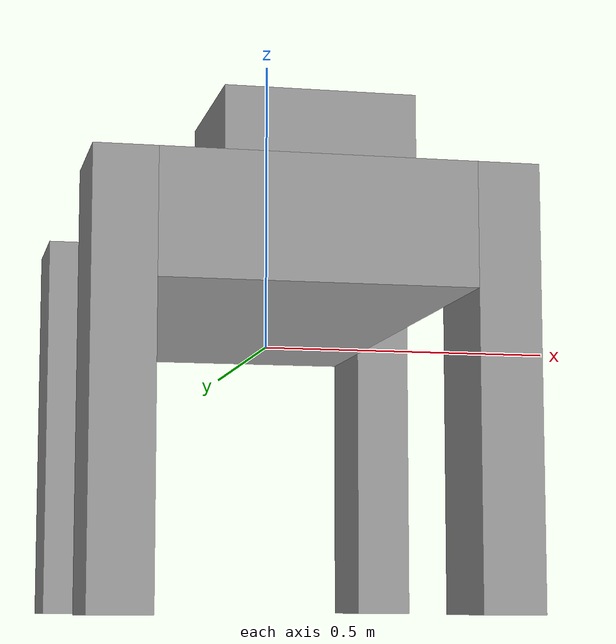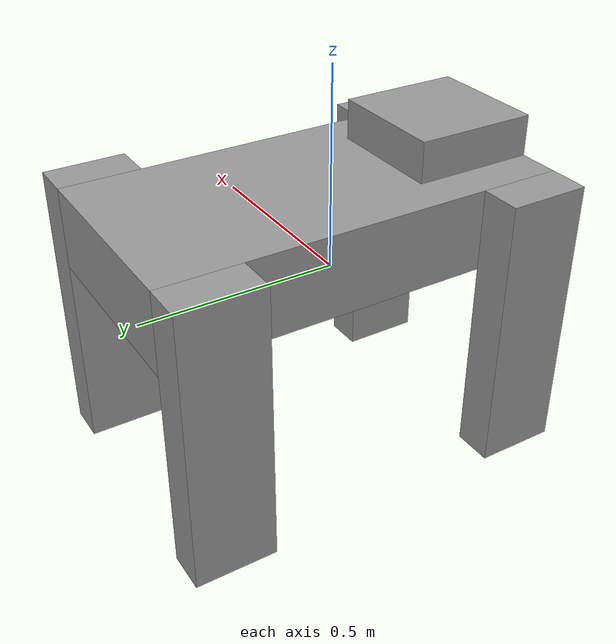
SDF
<?xml version='1.0'?>
<sdf version='1.7'>
  <model name='robot'>
    <link name='link_1_clone'>
      <inertial>
        <mass>1</mass>
        <inertia>
          <ixx>0.166667</ixx>
          <ixy>0</ixy>
          <ixz>0</ixz>
          <iyy>0.166667</iyy>
          <iyz>0</iyz>
          <izz>0.166667</izz>
        </inertia>
        <pose>0 0 0 0 -0 0</pose>
      </inertial>
      <pose>1e-06 0.058332 0.141667 0 -0 0</pose>
      <gravity>1</gravity>
      <self_collide>0</self_collide>
      <kinematic>0</kinematic>
      <enable_wind>0</enable_wind>
      <visual name='visual'>
        <pose>0 0 0 0 -0 0</pose>
        <geometry>
          <box>
            <size>0.5 1 0.2</size>
          </box>
        </geometry>
        <material>
          <lighting>1</lighting>
          <script>
            <uri>file://media/materials/scripts/gazebo.material</uri>
            <name>Gazebo/Grey</name>
          </script>
          <shader type='pixel'>
            <normal_map>__default__</normal_map>
          </shader>
          <ambient>0.3 0.3 0.3 1</ambient>
          <diffuse>0.7 0.7 0.7 1</diffuse>
          <specular>0.01 0.01 0.01 1</specular>
          <emissive>0 0 0 1</emissive>
        </material>
        <transparency>0</transparency>
        <cast_shadows>1</cast_shadows>
      </visual>
      <collision name='collision'>
        <laser_retro>0</laser_retro>
        <max_contacts>10</max_contacts>
        <pose>0 0 0 0 -0 0</pose>
        <geometry>
          <box>
            <size>0.5 1 0.2</size>
          </box>
        </geometry>
        <surface>
          <friction>
            <ode>
              <mu>1</mu>
              <mu2>1</mu2>
              <fdir1>0 0 0</fdir1>
              <slip1>0</slip1>
              <slip2>0</slip2>
            </ode>
            <torsional>
              <coefficient>1</coefficient>
              <patch_radius>0</patch_radius>
              <surface_radius>0</surface_radius>
              <use_patch_radius>1</use_patch_radius>
              <ode>
                <slip>0</slip>
              </ode>
            </torsional>
          </friction>
          <bounce>
            <restitution_coefficient>0</restitution_coefficient>
            <threshold>1e+06</threshold>
          </bounce>
          <contact>
            <collide_without_contact>0</collide_without_contact>
            <collide_without_contact_bitmask>1</collide_without_contact_bitmask>
            <collide_bitmask>1</collide_bitmask>
            <ode>
              <soft_cfm>0</soft_cfm>
              <soft_erp>0.2</soft_erp>
              <kp>1e+13</kp>
              <kd>1</kd>
              <max_vel>0.01</max_vel>
              <min_depth>0</min_depth>
            </ode>
            <bullet>
              <split_impulse>1</split_impulse>
              <split_impulse_penetration_threshold>-0.01</split_impulse_penetration_threshold>
              <soft_cfm>0</soft_cfm>
              <soft_erp>0.2</soft_erp>
              <kp>1e+13</kp>
              <kd>1</kd>
            </bullet>
          </contact>
        </surface>
      </collision>
    </link>
    <link name='link_3_clone'>
      <inertial>
        <mass>1</mass>
        <inertia>
          <ixx>0.166667</ixx>
          <ixy>0</ixy>
          <ixz>0</ixz>
          <iyy>0.166667</iyy>
          <iyz>0</iyz>
          <izz>0.166667</izz>
        </inertia>
        <pose>0 0 0 0 -0 0</pose>
      </inertial>
      <pose>0.300001 0.458331 -0.108333 0 -0 0</pose>
      <gravity>1</gravity>
      <self_collide>0</self_collide>
      <kinematic>0</kinematic>
      <enable_wind>0</enable_wind>
      <visual name='visual'>
        <pose>0 0 0 0 -0 0</pose>
        <geometry>
          <box>
            <size>0.1 0.2 0.7</size>
          </box>
        </geometry>
        <material>
          <lighting>1</lighting>
          <script>
            <uri>file://media/materials/scripts/gazebo.material</uri>
            <name>Gazebo/Grey</name>
          </script>
          <shader type='pixel'>
            <normal_map>__default__</normal_map>
          </shader>
          <ambient>0.3 0.3 0.3 1</ambient>
          <diffuse>0.7 0.7 0.7 1</diffuse>
          <specular>0.01 0.01 0.01 1</specular>
          <emissive>0 0 0 1</emissive>
        </material>
        <transparency>0</transparency>
        <cast_shadows>1</cast_shadows>
      </visual>
      <collision name='collision'>
        <laser_retro>0</laser_retro>
        <max_contacts>10</max_contacts>
        <pose>0 0 0 0 -0 0</pose>
        <geometry>
          <box>
            <size>0.1 0.2 0.7</size>
          </box>
        </geometry>
        <surface>
          <friction>
            <ode>
              <mu>1</mu>
              <mu2>1</mu2>
              <fdir1>0 0 0</fdir1>
              <slip1>0</slip1>
              <slip2>0</slip2>
            </ode>
            <torsional>
              <coefficient>1</coefficient>
              <patch_radius>0</patch_radius>
              <surface_radius>0</surface_radius>
              <use_patch_radius>1</use_patch_radius>
              <ode>
                <slip>0</slip>
              </ode>
            </torsional>
          </friction>
          <bounce>
            <restitution_coefficient>0</restitution_coefficient>
            <threshold>1e+06</threshold>
          </bounce>
          <contact>
            <collide_without_contact>0</collide_without_contact>
            <collide_without_contact_bitmask>1</collide_without_contact_bitmask>
            <collide_bitmask>1</collide_bitmask>
            <ode>
              <soft_cfm>0</soft_cfm>
              <soft_erp>0.2</soft_erp>
              <kp>1e+13</kp>
              <kd>1</kd>
              <max_vel>0.01</max_vel>
              <min_depth>0</min_depth>
            </ode>
            <bullet>
              <split_impulse>1</split_impulse>
              <split_impulse_penetration_threshold>-0.01</split_impulse_penetration_threshold>
              <soft_cfm>0</soft_cfm>
              <soft_erp>0.2</soft_erp>
              <kp>1e+13</kp>
              <kd>1</kd>
            </bullet>
          </contact>
        </surface>
      </collision>
    </link>
    <link name='link_3_clone_clone'>
      <inertial>
        <mass>1</mass>
        <inertia>
          <ixx>0.166667</ixx>
          <ixy>0</ixy>
          <ixz>0</ixz>
          <iyy>0.166667</iyy>
          <iyz>0</iyz>
          <izz>0.166667</izz>
        </inertia>
        <pose>0 0 0 0 -0 0</pose>
      </inertial>
      <pose>-0.299999 -0.341668 -0.108333 0 -0 0</pose>
      <gravity>1</gravity>
      <self_collide>0</self_collide>
      <kinematic>0</kinematic>
      <enable_wind>0</enable_wind>
      <visual name='visual'>
        <pose>0 0 0 0 -0 0</pose>
        <geometry>
          <box>
            <size>0.1 0.2 0.7</size>
          </box>
        </geometry>
        <material>
          <lighting>1</lighting>
          <script>
            <uri>file://media/materials/scripts/gazebo.material</uri>
            <name>Gazebo/Grey</name>
          </script>
          <shader type='pixel'>
            <normal_map>__default__</normal_map>
          </shader>
          <ambient>0.3 0.3 0.3 1</ambient>
          <diffuse>0.7 0.7 0.7 1</diffuse>
          <specular>0.01 0.01 0.01 1</specular>
          <emissive>0 0 0 1</emissive>
        </material>
        <transparency>0</transparency>
        <cast_shadows>1</cast_shadows>
      </visual>
      <collision name='collision'>
        <laser_retro>0</laser_retro>
        <max_contacts>10</max_contacts>
        <pose>0 0 0 0 -0 0</pose>
        <geometry>
          <box>
            <size>0.1 0.2 0.7</size>
          </box>
        </geometry>
        <surface>
          <friction>
            <ode>
              <mu>1</mu>
              <mu2>1</mu2>
              <fdir1>0 0 0</fdir1>
              <slip1>0</slip1>
              <slip2>0</slip2>
            </ode>
            <torsional>
              <coefficient>1</coefficient>
              <patch_radius>0</patch_radius>
              <surface_radius>0</surface_radius>
              <use_patch_radius>1</use_patch_radius>
              <ode>
                <slip>0</slip>
              </ode>
            </torsional>
          </friction>
          <bounce>
            <restitution_coefficient>0</restitution_coefficient>
            <threshold>1e+06</threshold>
          </bounce>
          <contact>
            <collide_without_contact>0</collide_without_contact>
            <collide_without_contact_bitmask>1</collide_without_contact_bitmask>
            <collide_bitmask>1</collide_bitmask>
            <ode>
              <soft_cfm>0</soft_cfm>
              <soft_erp>0.2</soft_erp>
              <kp>1e+13</kp>
              <kd>1</kd>
              <max_vel>0.01</max_vel>
              <min_depth>0</min_depth>
            </ode>
            <bullet>
              <split_impulse>1</split_impulse>
              <split_impulse_penetration_threshold>-0.01</split_impulse_penetration_threshold>
              <soft_cfm>0</soft_cfm>
              <soft_erp>0.2</soft_erp>
              <kp>1e+13</kp>
              <kd>1</kd>
            </bullet>
          </contact>
        </surface>
      </collision>
    </link>
    <link name='link_3_clone_clone_0'>
      <inertial>
        <mass>1</mass>
        <inertia>
          <ixx>0.166667</ixx>
          <ixy>0</ixy>
          <ixz>0</ixz>
          <iyy>0.166667</iyy>
          <iyz>0</iyz>
          <izz>0.166667</izz>
        </inertia>
        <pose>0 0 0 0 -0 0</pose>
      </inertial>
      <pose>-0.299999 0.458331 -0.108333 0 -0 0</pose>
      <gravity>1</gravity>
      <self_collide>0</self_collide>
      <kinematic>0</kinematic>
      <enable_wind>0</enable_wind>
      <visual name='visual'>
        <pose>0 0 0 0 -0 0</pose>
        <geometry>
          <box>
            <size>0.1 0.2 0.7</size>
          </box>
        </geometry>
        <material>
          <lighting>1</lighting>
          <script>
            <uri>file://media/materials/scripts/gazebo.material</uri>
            <name>Gazebo/Grey</name>
          </script>
          <shader type='pixel'>
            <normal_map>__default__</normal_map>
          </shader>
          <ambient>0.3 0.3 0.3 1</ambient>
          <diffuse>0.7 0.7 0.7 1</diffuse>
          <specular>0.01 0.01 0.01 1</specular>
          <emissive>0 0 0 1</emissive>
        </material>
        <transparency>0</transparency>
        <cast_shadows>1</cast_shadows>
      </visual>
      <collision name='collision'>
        <laser_retro>0</laser_retro>
        <max_contacts>10</max_contacts>
        <pose>0 0 0 0 -0 0</pose>
        <geometry>
          <box>
            <size>0.1 0.2 0.7</size>
          </box>
        </geometry>
        <surface>
          <friction>
            <ode>
              <mu>1</mu>
              <mu2>1</mu2>
              <fdir1>0 0 0</fdir1>
              <slip1>0</slip1>
              <slip2>0</slip2>
            </ode>
            <torsional>
              <coefficient>1</coefficient>
              <patch_radius>0</patch_radius>
              <surface_radius>0</surface_radius>
              <use_patch_radius>1</use_patch_radius>
              <ode>
                <slip>0</slip>
              </ode>
            </torsional>
          </friction>
          <bounce>
            <restitution_coefficient>0</restitution_coefficient>
            <threshold>1e+06</threshold>
          </bounce>
          <contact>
            <collide_without_contact>0</collide_without_contact>
            <collide_without_contact_bitmask>1</collide_without_contact_bitmask>
            <collide_bitmask>1</collide_bitmask>
            <ode>
              <soft_cfm>0</soft_cfm>
              <soft_erp>0.2</soft_erp>
              <kp>1e+13</kp>
              <kd>1</kd>
              <max_vel>0.01</max_vel>
              <min_depth>0</min_depth>
            </ode>
            <bullet>
              <split_impulse>1</split_impulse>
              <split_impulse_penetration_threshold>-0.01</split_impulse_penetration_threshold>
              <soft_cfm>0</soft_cfm>
              <soft_erp>0.2</soft_erp>
              <kp>1e+13</kp>
              <kd>1</kd>
            </bullet>
          </contact>
        </surface>
      </collision>
    </link>
    <link name='link_3_clone_clone_1'>
      <inertial>
        <mass>1</mass>
        <inertia>
          <ixx>0.166667</ixx>
          <ixy>0</ixy>
          <ixz>0</ixz>
          <iyy>0.166667</iyy>
          <iyz>0</iyz>
          <izz>0.166667</izz>
        </inertia>
        <pose>0 0 0 0 -0 0</pose>
      </inertial>
      <pose>0.300001 -0.341668 -0.108333 0 -0 0</pose>
      <gravity>1</gravity>
      <self_collide>0</self_collide>
      <kinematic>0</kinematic>
      <enable_wind>0</enable_wind>
      <visual name='visual'>
        <pose>0 0 0 0 -0 0</pose>
        <geometry>
          <box>
            <size>0.1 0.2 0.7</size>
          </box>
        </geometry>
        <material>
          <lighting>1</lighting>
          <script>
            <uri>file://media/materials/scripts/gazebo.material</uri>
            <name>Gazebo/Grey</name>
          </script>
          <shader type='pixel'>
            <normal_map>__default__</normal_map>
          </shader>
          <ambient>0.3 0.3 0.3 1</ambient>
          <diffuse>0.7 0.7 0.7 1</diffuse>
          <specular>0.01 0.01 0.01 1</specular>
          <emissive>0 0 0 1</emissive>
        </material>
        <transparency>0</transparency>
        <cast_shadows>1</cast_shadows>
      </visual>
      <collision name='collision'>
        <laser_retro>0</laser_retro>
        <max_contacts>10</max_contacts>
        <pose>0 0 0 0 -0 0</pose>
        <geometry>
          <box>
            <size>0.1 0.2 0.7</size>
          </box>
        </geometry>
        <surface>
          <friction>
            <ode>
              <mu>1</mu>
              <mu2>1</mu2>
              <fdir1>0 0 0</fdir1>
              <slip1>0</slip1>
              <slip2>0</slip2>
            </ode>
            <torsional>
              <coefficient>1</coefficient>
              <patch_radius>0</patch_radius>
              <surface_radius>0</surface_radius>
              <use_patch_radius>1</use_patch_radius>
              <ode>
                <slip>0</slip>
              </ode>
            </torsional>
          </friction>
          <bounce>
            <restitution_coefficient>0</restitution_coefficient>
            <threshold>1e+06</threshold>
          </bounce>
          <contact>
            <collide_without_contact>0</collide_without_contact>
            <collide_without_contact_bitmask>1</collide_without_contact_bitmask>
            <collide_bitmask>1</collide_bitmask>
            <ode>
              <soft_cfm>0</soft_cfm>
              <soft_erp>0.2</soft_erp>
              <kp>1e+13</kp>
              <kd>1</kd>
              <max_vel>0.01</max_vel>
              <min_depth>0</min_depth>
            </ode>
            <bullet>
              <split_impulse>1</split_impulse>
              <split_impulse_penetration_threshold>-0.01</split_impulse_penetration_threshold>
              <soft_cfm>0</soft_cfm>
              <soft_erp>0.2</soft_erp>
              <kp>1e+13</kp>
              <kd>1</kd>
            </bullet>
          </contact>
        </surface>
      </collision>
    </link>
    <link name='link_4_clone'>
      <inertial>
        <mass>1</mass>
        <inertia>
          <ixx>0.166667</ixx>
          <ixy>0</ixy>
          <ixz>0</ixz>
          <iyy>0.166667</iyy>
          <iyz>0</iyz>
          <izz>0.166667</izz>
        </inertia>
        <pose>0 0 0 0 -0 0</pose>
      </inertial>
      <pose>1e-06 -0.291669 0.291667 0 -0 0</pose>
      <gravity>1</gravity>
      <self_collide>0</self_collide>
      <kinematic>0</kinematic>
      <enable_wind>0</enable_wind>
      <visual name='visual'>
        <pose>0 0 0 0 -0 0</pose>
        <geometry>
          <box>
            <size>0.3 0.3 0.1</size>
          </box>
        </geometry>
        <material>
          <lighting>1</lighting>
          <script>
            <uri>file://media/materials/scripts/gazebo.material</uri>
            <name>Gazebo/Grey</name>
          </script>
          <shader type='pixel'>
            <normal_map>__default__</normal_map>
          </shader>
          <ambient>0.3 0.3 0.3 1</ambient>
          <diffuse>0.7 0.7 0.7 1</diffuse>
          <specular>0.01 0.01 0.01 1</specular>
          <emissive>0 0 0 1</emissive>
        </material>
        <transparency>0</transparency>
        <cast_shadows>1</cast_shadows>
      </visual>
      <collision name='collision'>
        <laser_retro>0</laser_retro>
        <max_contacts>10</max_contacts>
        <pose>0 0 0 0 -0 0</pose>
        <geometry>
          <box>
            <size>0.3 0.3 0.1</size>
          </box>
        </geometry>
        <surface>
          <friction>
            <ode>
              <mu>1</mu>
              <mu2>1</mu2>
              <fdir1>0 0 0</fdir1>
              <slip1>0</slip1>
              <slip2>0</slip2>
            </ode>
            <torsional>
              <coefficient>1</coefficient>
              <patch_radius>0</patch_radius>
              <surface_radius>0</surface_radius>
              <use_patch_radius>1</use_patch_radius>
              <ode>
                <slip>0</slip>
              </ode>
            </torsional>
          </friction>
          <bounce>
            <restitution_coefficient>0</restitution_coefficient>
            <threshold>1e+06</threshold>
          </bounce>
          <contact>
            <collide_without_contact>0</collide_without_contact>
            <collide_without_contact_bitmask>1</collide_without_contact_bitmask>
            <collide_bitmask>1</collide_bitmask>
            <ode>
              <soft_cfm>0</soft_cfm>
              <soft_erp>0.2</soft_erp>
              <kp>1e+13</kp>
              <kd>1</kd>
              <max_vel>0.01</max_vel>
              <min_depth>0</min_depth>
            </ode>
            <bullet>
              <split_impulse>1</split_impulse>
              <split_impulse_penetration_threshold>-0.01</split_impulse_penetration_threshold>
              <soft_cfm>0</soft_cfm>
              <soft_erp>0.2</soft_erp>
              <kp>1e+13</kp>
              <kd>1</kd>
            </bullet>
          </contact>
        </surface>
      </collision>
    </link>
    <joint name='link_1_clone_JOINT_1' type='revolute'>
      <parent>link_1_clone</parent>
      <child>link_3_clone_clone_1</child>
      <pose>0 0 0 0 -0 0</pose>
      <axis>
        <xyz>1 0 0</xyz>
        <limit>
          <lower>-1.79769e+308</lower>
          <upper>1.79769e+308</upper>
          <effort>-1</effort>
          <velocity>-1</velocity>
        </limit>
        <dynamics>
          <spring_reference>0</spring_reference>
          <spring_stiffness>0</spring_stiffness>
          <damping>0</damping>
        </dynamics>
      </axis>
      <physics>
        <ode>
          <limit>
            <cfm>0</cfm>
            <erp>0.2</erp>
          </limit>
          <suspension>
            <cfm>0</cfm>
            <erp>0.2</erp>
          </suspension>
        </ode>
      </physics>
    </joint>
    <joint name='link_1_clone_JOINT_2' type='revolute'>
      <parent>link_1_clone</parent>
      <child>link_3_clone_clone</child>
      <pose>0 0 0 0 -0 0</pose>
      <axis>
        <xyz>1 0 0</xyz>
        <limit>
          <lower>-1.79769e+308</lower>
          <upper>1.79769e+308</upper>
          <effort>-1</effort>
          <velocity>-1</velocity>
        </limit>
        <dynamics>
          <spring_reference>0</spring_reference>
          <spring_stiffness>0</spring_stiffness>
          <damping>0</damping>
        </dynamics>
      </axis>
      <physics>
        <ode>
          <limit>
            <cfm>0</cfm>
            <erp>0.2</erp>
          </limit>
          <suspension>
            <cfm>0</cfm>
            <erp>0.2</erp>
          </suspension>
        </ode>
      </physics>
    </joint>
    <joint name='link_1_clone_JOINT_3' type='revolute'>
      <parent>link_1_clone</parent>
      <child>link_3_clone_clone_0</child>
      <pose>0 0 0 0 -0 0</pose>
      <axis>
        <xyz>1 0 0</xyz>
        <limit>
          <lower>-1.79769e+308</lower>
          <upper>1.79769e+308</upper>
          <effort>-1</effort>
          <velocity>-1</velocity>
        </limit>
        <dynamics>
          <spring_reference>0</spring_reference>
          <spring_stiffness>0</spring_stiffness>
          <damping>0</damping>
        </dynamics>
      </axis>
      <physics>
        <ode>
          <limit>
            <cfm>0</cfm>
            <erp>0.2</erp>
          </limit>
          <suspension>
            <cfm>0</cfm>
            <erp>0.2</erp>
          </suspension>
        </ode>
      </physics>
    </joint>
    <joint name='link_1_clone_JOINT_4' type='revolute'>
      <parent>link_1_clone</parent>
      <child>link_3_clone</child>
      <pose>0 0 0 0 -0 0</pose>
      <axis>
        <xyz>1 0 0</xyz>
        <limit>
          <lower>-1.79769e+308</lower>
          <upper>1.79769e+308</upper>
          <effort>-1</effort>
          <velocity>-1</velocity>
        </limit>
        <dynamics>
          <spring_reference>0</spring_reference>
          <spring_stiffness>0</spring_stiffness>
          <damping>0</damping>
        </dynamics>
      </axis>
      <physics>
        <ode>
          <limit>
            <cfm>0</cfm>
            <erp>0.2</erp>
          </limit>
          <suspension>
            <cfm>0</cfm>
            <erp>0.2</erp>
          </suspension>
        </ode>
      </physics>
    </joint>
    <joint name='link_1_clone_JOINT_5' type='revolute'>
      <parent>link_1_clone</parent>
      <child>link_4_clone</child>
      <pose>0 0 0 0 -0 0</pose>
      <axis>
        <xyz>0 0 1</xyz>
        <limit>
          <lower>-1.79769e+308</lower>
          <upper>1.79769e+308</upper>
          <effort>-1</effort>
          <velocity>-1</velocity>
        </limit>
        <dynamics>
          <spring_reference>0</spring_reference>
          <spring_stiffness>0</spring_stiffness>
          <damping>0</damping>
        </dynamics>
      </axis>
      <physics>
        <ode>
          <limit>
            <cfm>0</cfm>
            <erp>0.2</erp>
          </limit>
          <suspension>
            <cfm>0</cfm>
            <erp>0.2</erp>
          </suspension>
        </ode>
      </physics>
    </joint>
    <static>0</static>
    <allow_auto_disable>1</allow_auto_disable>
  </model>
</sdf>
